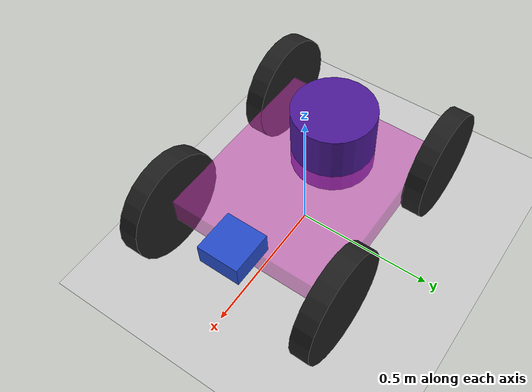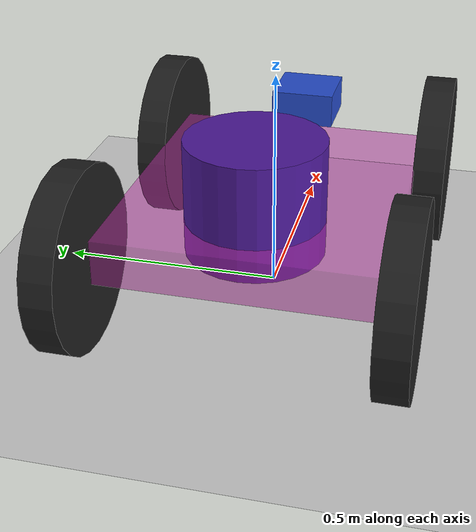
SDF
<sdf version="1.7">
 <world name="default">
  <light name="sun" type="directional">
   <pose>0 0 10 0 -0 0</pose>
   <diffuse>0.8 0.8 0.8 1</diffuse>
   <specular>0.2 0.2 0.2 1</specular>
   <attenuation>
    <range>1000</range>
    <constant>0.9</constant>
    <linear>0.01</linear>
    <quadratic>0.001</quadratic>
   </attenuation>
   <direction>-0.5 0.1 -0.9</direction>
   <spot><inner_angle>0</inner_angle><outer_angle>0</outer_angle><falloff>0</falloff></spot>
  </light>
  <model name="ground_plane">
   <static>1</static>
   <link name="link">
    <collision name="collision">
     <geometry><plane><normal>0 0 1</normal><size>100 100</size></plane></geometry>
     <surface>
      <contact><collide_bitmask>65535</collide_bitmask></contact>
      <friction><ode><mu>100</mu><mu2>50</mu2></ode></friction>
     </surface>
    </collision>
    <visual name="visual">
     <cast_shadows>0</cast_shadows>
     <geometry><plane><normal>0 0 1</normal><size>100 100</size></plane></geometry>
     <material>
      <script><uri>file://media/materials/scripts/gazebo.material</uri><name>Gazebo/Grey</name></script>
     </material>
    </visual>
   </link>
  </model>
  <gravity>0 0 -9.8</gravity>
  <magnetic_field>6e-06 2.3e-05 -4.2e-05</magnetic_field>
  <atmosphere type="adiabatic"/>
  <physics type="ode">
   <max_step_size>0.001</max_step_size>
   <real_time_factor>1</real_time_factor>
   <real_time_update_rate>1000</real_time_update_rate>
  </physics>
  <scene><ambient>0.4 0.4 0.4 1</ambient><background>0.7 0.7 0.7 1</background><shadows>1</shadows></scene>
  <audio><device>default</device></audio>
  <spherical_coordinates>
   <surface_model>EARTH_WGS84</surface_model>
   <latitude_deg>0</latitude_deg>
   <longitude_deg>0</longitude_deg>
   <elevation>0</elevation>
   <heading_deg>0</heading_deg>
  </spherical_coordinates>
  <model name="slampibot">
   <link name="dummy_link">
    <inertial>
     <pose>-0.024 0 0.05 0 -0 0</pose>
     <mass>0.25</mass>
     <inertia>
      <ixx>0.00478708</ixx>
      <ixy>8.62687e-07</ixy>
      <ixz>0.0008</ixz>
      <iyy>0.0102864</iyy>
      <iyz>0</iyz>
      <izz>0.0128118</izz>
     </inertia>
    </inertial>
    <collision name="dummy_link_fixed_joint_lump__chassis_collision">
     <pose>0 0 0 0 -0 1.57</pose>
     <geometry><box><size>0.6 0.7 0.1</size></box></geometry>
    </collision>
    <collision name="dummy_link_fixed_joint_lump__camera_collision_1">
     <pose>0.4 0 0.1 0 -0 0</pose>
     <geometry><box><size>0.15 0.15 0.08</size></box></geometry>
    </collision>
    <collision name="dummy_link_fixed_joint_lump__lidar_collision_2">
     <pose>-0.16 0 0.1 0 -0 0</pose>
     <geometry><cylinder><length>0.25</length><radius>0.15</radius></cylinder></geometry>
    </collision>
    <visual name="dummy_link_fixed_joint_lump__chassis_visual">
     <pose>0 0 0 0 -0 1.57</pose>
     <geometry><box><size>0.6 0.7 0.1</size></box></geometry>
     <material>
      <script>
       <name>Gazebo/DarkMagentaTransparent</name>
       <uri>file://media/materials/scripts/gazebo.material</uri>
      </script>
     </material>
    </visual>
    <visual name="dummy_link_fixed_joint_lump__camera_visual_1">
     <pose>0.4 0 0.1 0 -0 0</pose>
     <geometry><box><size>0.15 0.15 0.08</size></box></geometry>
     <material>
      <script><name>Gazebo/Blue</name><uri>file://media/materials/scripts/gazebo.material</uri></script>
     </material>
    </visual>
    <visual name="dummy_link_fixed_joint_lump__lidar_visual_2">
     <pose>-0.16 0 0.1 0 -0 0</pose>
     <geometry><cylinder><length>0.25</length><radius>0.15</radius></cylinder></geometry>
     <material>
      <script><name>Gazebo/Indigo</name><uri>file://media/materials/scripts/gazebo.material</uri></script>
     </material>
    </visual>
   </link>
   <joint name="LB_wheel_joint" type="revolute">
    <pose relative_to="dummy_link">-0.333 0.333 0 -0 1.57 -1.57</pose>
    <parent>dummy_link</parent>
    <child>LB_wheel</child>
    <axis>
     <xyz>0 0 -1</xyz>
     <limit><effort>10</effort><velocity>100</velocity><lower>-1e+16</lower><upper>1e+16</upper></limit>
     <dynamics>
      <damping>0.1</damping>
      <friction>0.1</friction>
      <spring_reference>0</spring_reference>
      <spring_stiffness>0</spring_stiffness>
     </dynamics>
    </axis>
   </joint>
   <link name="LB_wheel">
    <pose relative_to="LB_wheel_joint">0 0 0 0 -0 0</pose>
    <inertial>
     <mass>0.05</mass>
     <inertia>
      <ixx>0.000520417</ixx>
      <ixy>0</ixy>
      <ixz>0</ixz>
      <iyy>0.000520417</iyy>
      <iyz>0</iyz>
      <izz>0.001</izz>
     </inertia>
    </inertial>
    <collision name="LB_wheel_collision">
     <geometry><sphere><radius>0.2</radius></sphere></geometry>
     <surface><friction><ode><mu>0.2</mu><mu2>0.2</mu2></ode></friction></surface>
    </collision>
    <visual name="LB_wheel_visual">
     <geometry><cylinder><length>0.07</length><radius>0.2</radius></cylinder></geometry>
     <material>
      <script><name>Gazebo/Black</name><uri>file://media/materials/scripts/gazebo.material</uri></script>
     </material>
    </visual>
   </link>
   <joint name="LF_wheel_joint" type="revolute">
    <pose relative_to="dummy_link">0.333 0.333 0 -0 1.57 -1.57</pose>
    <parent>dummy_link</parent>
    <child>LF_wheel</child>
    <axis>
     <xyz>0 0 -1</xyz>
     <limit><effort>10</effort><velocity>100</velocity><lower>-1e+16</lower><upper>1e+16</upper></limit>
     <dynamics>
      <damping>0.1</damping>
      <friction>0.1</friction>
      <spring_reference>0</spring_reference>
      <spring_stiffness>0</spring_stiffness>
     </dynamics>
    </axis>
   </joint>
   <link name="LF_wheel">
    <pose relative_to="LF_wheel_joint">0 0 0 0 -0 0</pose>
    <inertial>
     <mass>0.05</mass>
     <inertia>
      <ixx>0.000520417</ixx>
      <ixy>0</ixy>
      <ixz>0</ixz>
      <iyy>0.000520417</iyy>
      <iyz>0</iyz>
      <izz>0.001</izz>
     </inertia>
    </inertial>
    <collision name="LF_wheel_collision">
     <geometry><sphere><radius>0.2</radius></sphere></geometry>
     <surface><friction><ode><mu>0.2</mu><mu2>0.2</mu2></ode></friction></surface>
    </collision>
    <visual name="LF_wheel_visual">
     <geometry><cylinder><length>0.07</length><radius>0.2</radius></cylinder></geometry>
     <material>
      <script><name>Gazebo/Black</name><uri>file://media/materials/scripts/gazebo.material</uri></script>
     </material>
    </visual>
   </link>
   <joint name="RB_wheel_joint" type="revolute">
    <pose relative_to="dummy_link">-0.333 -0.333 0 -0 1.57 -1.57</pose>
    <parent>dummy_link</parent>
    <child>RB_wheel</child>
    <axis>
     <xyz>0 0 -1</xyz>
     <limit><effort>10</effort><velocity>100</velocity><lower>-1e+16</lower><upper>1e+16</upper></limit>
     <dynamics>
      <damping>0.1</damping>
      <friction>0.1</friction>
      <spring_reference>0</spring_reference>
      <spring_stiffness>0</spring_stiffness>
     </dynamics>
    </axis>
   </joint>
   <link name="RB_wheel">
    <pose relative_to="RB_wheel_joint">0 0 0 0 -0 0</pose>
    <inertial>
     <mass>0.05</mass>
     <inertia>
      <ixx>0.000520417</ixx>
      <ixy>0</ixy>
      <ixz>0</ixz>
      <iyy>0.000520417</iyy>
      <iyz>0</iyz>
      <izz>0.001</izz>
     </inertia>
    </inertial>
    <collision name="RB_wheel_collision">
     <geometry><sphere><radius>0.2</radius></sphere></geometry>
     <surface><friction><ode><mu>0.2</mu><mu2>0.2</mu2></ode></friction></surface>
    </collision>
    <visual name="RB_wheel_visual">
     <geometry><cylinder><length>0.07</length><radius>0.2</radius></cylinder></geometry>
     <material>
      <script><name>Gazebo/Black</name><uri>file://media/materials/scripts/gazebo.material</uri></script>
     </material>
    </visual>
   </link>
   <joint name="RF_wheel_joint" type="revolute">
    <pose relative_to="dummy_link">0.333 -0.333 0 -0 1.57 -1.57</pose>
    <parent>dummy_link</parent>
    <child>RF_wheel</child>
    <axis>
     <xyz>0 0 -1</xyz>
     <limit><effort>10</effort><velocity>100</velocity><lower>-1e+16</lower><upper>1e+16</upper></limit>
     <dynamics>
      <damping>0.1</damping>
      <friction>0.1</friction>
      <spring_reference>0</spring_reference>
      <spring_stiffness>0</spring_stiffness>
     </dynamics>
    </axis>
   </joint>
   <link name="RF_wheel">
    <pose relative_to="RF_wheel_joint">0 0 0 0 -0 0</pose>
    <inertial>
     <mass>0.05</mass>
     <inertia>
      <ixx>0.000520417</ixx>
      <ixy>0</ixy>
      <ixz>0</ixz>
      <iyy>0.000520417</iyy>
      <iyz>0</iyz>
      <izz>0.001</izz>
     </inertia>
    </inertial>
    <collision name="RF_wheel_collision">
     <geometry><sphere><radius>0.2</radius></sphere></geometry>
     <surface><friction><ode><mu>0.2</mu><mu2>0.2</mu2></ode></friction></surface>
    </collision>
    <visual name="RF_wheel_visual">
     <geometry><cylinder><length>0.07</length><radius>0.2</radius></cylinder></geometry>
     <material>
      <script><name>Gazebo/Black</name><uri>file://media/materials/scripts/gazebo.material</uri></script>
     </material>
    </visual>
   </link>
   <static>0</static>
   <plugin name="gazebo_ros2_control" filename="libgazebo_ros2_control.so"/>
   <pose>-0.007417 0.004274 0.199995 -0 -1.4e-05 -0.007736</pose>
  </model>
 </world>
</sdf>
